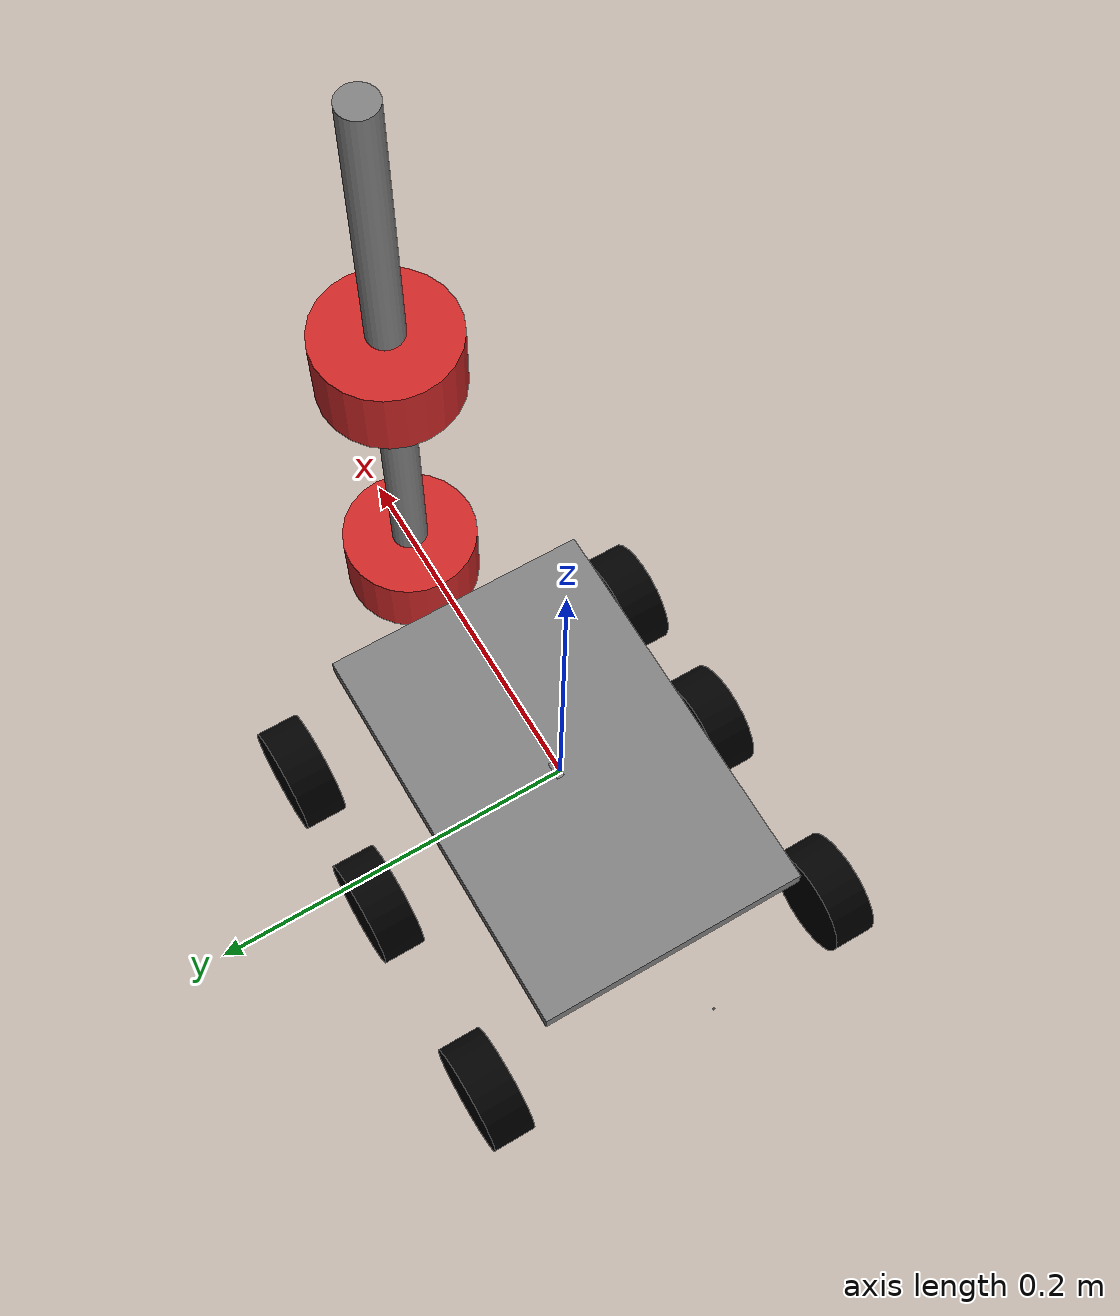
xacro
<?xml version="1.0"?>

<!-- Using initial specification from https://github.com/SyrianSpock/rover
Ideas taken from
http://www.generationrobots.com/blog/en/2015/02/robotic-simulation-scenarios-with-gazebo-and-ros/
-->

<robot name="lsbot" xmlns:xacro="http://www.ros.org/wiki/xacro">
  <xacro:property name="prefix" value=""/>
  <!-- Degree-to-radian conversions -->
  <xacro:property name="degrees_45" value="0.785398163"/>
  <xacro:property name="degrees_90" value="1.57079633"/>
  <xacro:property name="degrees_180" value="3.1415926535897931" />

  <!-- body properties
         body_length is measured along the x axis,
         body_width along the y axis, and body_height along the z axis. -->
  <xacro:property name="body_length"    value="0.2286"/>
  <xacro:property name="body_width"     value="0.1524"/>
  <xacro:property name="body_height"    value="0.01"/>
  <xacro:property name="body_mass"      value="0.5"/>
  <xacro:property name="body_clearance" value="0.125"/>

  <!-- Tower properties -->
  <xacro:property name="tower_name"     value="tower" />
  <xacro:property name="tower_length"   value="0.35" />
  <xacro:property name="tower_radius"   value="0.01" />
  <xacro:property name="tower_x"        value="${body_length/2 + 0.05}" />
  <xacro:property name="tower_xyz"      value="${tower_x} 0 ${tower_length/2}" />
  <xacro:property name="tower_mass"     value="0.05" />

  <xacro:property name="hub_dia"       value="0.100"/>
  <xacro:property name="tire_dia"      value="0.0625"/>
  <xacro:property name="tire_width"    value="0.024765"/>
  <xacro:property name="wheel_mass"    value="0.038980594"/>

  <!-- Wheel position properties -->
  <xacro:property name="wheelbase_xoffset" value="0.025"/>
  <xacro:property name="wheelbase_yoffset" value="0.022"/>
  <xacro:property name="wheel_bogie_d"    value="${3*tire_dia/2}"/>

  <xacro:property name="wheelbase_x"     value="${body_length/2 + wheelbase_xoffset - tire_dia/2}"/>
  <xacro:property name="wheelbase_track" value="${body_width/2 + wheelbase_yoffset + tire_width/2}"/>

  <!-- Sensor position properties -->
  <xacro:property name="scanner_length"  value="0.07570"/>
  <xacro:property name="scanner_mass"    value="0.05"/>
  <xacro:property name="sensor_colour"   value="0.8 0 0 1"/>

  <xacro:property name="scanner_width"   value="0.07570"/>
  <xacro:property name="scanner_height"  value="0.05"/>
  <xacro:property name="scanner_angle"   value="${degrees_180}"/>
  <xacro:property name="scanner_samples" value="180"/>
  <xacro:property name="scanner_topic"   value="/scan"/>
  <xacro:property name="scanner_position" value="${tower_x} 0 ${body_height/2 - scanner_height/2}" />
  <xacro:property name="scanner_orientation" value="0 0 0"/>

  <xacro:property name="floorscanner_position" value="${tower_x + 0.05} 0 ${tower_length}" />
  <xacro:property name="floorscanner_position_rotate" value="0 0 0" />
  <xacro:property name="floorscanner_topic"   value="/floorscan"/>
  <xacro:property name="floorscanner_orientation" value="0 0.68 0"/>
  <xacro:property name="floorscanner_orientation_rotate" value="0 0 0"/>
  <xacro:property name="floorscanner_angle"   value="${degrees_90}"/>

  <xacro:property name="axle_eff_limit" value="5.12766"/>
  <xacro:property name="axle_vel_limit" value="244.8696"/>

  <material name="body_mat">
    <color rgba="0.5 0.5 0.5 1"/>
  </material>
  <material name="tire_mat">
    <color rgba="0 0 0 1"/>
  </material>
  <material name="imu_mat">
    <color rgba="0 0 0 1"/>
  </material>

  <!-- Null inertial element. This is needed to make the model work with Gazebo. -->
  <xacro:macro name="null_inertial">
    <inertial>
      <mass value="0.001"/>
      <inertia ixx="0.001" ixy="0" ixz="0" iyy="0.001" iyz="0" izz="0.001"/>
    </inertial>
  </xacro:macro>

  <!-- Inertia of a solid cuboid. Width is measured along the x axis, depth along the y axis, and height along the z axis. -->
  <xacro:macro name="solid_cuboid_inertial"
               params="width depth height mass *origin">
    <inertial>
      <xacro:insert_block name="origin"/>
      <mass value="${mass}"/>
      <inertia ixx="${mass * (depth * depth + height * height) / 12}"
               ixy="0" ixz="0"
               iyy="${mass * (width * width + height * height) / 12}"
               iyz="0"
               izz="${mass * (width * width + depth * depth) / 12}"/>
    </inertial>
  </xacro:macro>

  <xacro:macro name="thick_walled_tube_inertial"
               params="inner_rad outer_rad height mass">
    <inertial>
      <mass value="${mass}"/>
      <inertia ixx="${(1 / 12) * mass * (3 * (inner_rad * inner_rad +
                    outer_rad * outer_rad) + height * height)}"
               ixy="0" ixz="0"
               iyy="${(1 / 12) * mass * (3 * (inner_rad * inner_rad +
                    outer_rad * outer_rad) + height * height)}"
               iyz="0"
               izz="${mass * (inner_rad * inner_rad +
                    outer_rad * outer_rad) / 2}"/>
    </inertial>
  </xacro:macro>

  <!-- The "wheel" macro defines an axle carrier, axle, and wheel. -->
  <xacro:macro name="wheel" params="lr_prefix fr_prefix lr_pos fr_pos">
    <joint name="${lr_prefix}_${fr_prefix}_axle" type="continuous">
      <parent link="body"/>
      <child link="${lr_prefix}_${fr_prefix}_wheel"/>
      <origin xyz="${fr_pos}
                   ${lr_pos}
                   ${- body_clearance + tire_dia/2}"
              rpy="${degrees_90} 0 0"/>
      <axis xyz="0 0 -1" use_parent_model_frame="0"/>
    </joint>
    <transmission name="${lr_prefix}_${fr_prefix}_axle_trans">
      <type>transmission_interface/SimpleTransmission</type>
      <joint name="${lr_prefix}_${fr_prefix}_axle2">
        <hardwareInterface>hardware_interface/VelocityJointInterface</hardwareInterface>
      </joint>
      <actuator name="${lr_prefix}_${fr_prefix}_axle_act">
        <hardwareInterface>hardware_interface/VelocityJointInterface</hardwareInterface>
        <mechanicalReduction>10</mechanicalReduction>
      </actuator>
    </transmission>
    <link name="${lr_prefix}_${fr_prefix}_wheel">
      <xacro:visual_collision rpy="0 0 0" material="tire_mat">
         <cylinder radius="${tire_dia / 2}" length="${tire_width}"/>
      </xacro:visual_collision>
      <xacro:thick_walled_tube_inertial
          inner_rad="${hub_dia / 2}" outer_rad="${tire_dia / 2}"
          height="${tire_width}" mass="${wheel_mass}"/>
    </link>
    <gazebo reference="${lr_prefix}_${fr_prefix}_wheel">
      <material>Gazebo/Black</material>
    </gazebo>
  </xacro:macro>

  <xacro:macro name="visual_collision" params="rpy material *form" >
   <visual>
      <geometry>
        <xacro:insert_block name="form"/>
      </geometry>
      <origin xyz="0 0 0" rpy="${rpy}" />
      <material name="${material}" />
    </visual>
    <collision>
      <geometry>
        <xacro:insert_block name="form"/>
      </geometry>
      <origin xyz="0 0 0" rpy="${rpy}" />
    </collision>
  </xacro:macro>

  <!-- robot_footprint -->
  <link name="robot_footprint"></link>

  <joint name="robot_footprint_joint" type="fixed">
    <origin xyz="0 0 0" rpy="0 0 0" />
    <parent link="robot_footprint"/>
    <child link="base_link" />
  </joint>

  <!-- base_link must have geometry so that its axes can be displayed in rviz. -->
  <link name="base_link">
    <visual>
      <geometry>
        <box size="0.01 0.01 0.01"/>
      </geometry>
      <material name="body_mat"/>
    </visual>
  </link>
  <gazebo reference="base_link">
    <material>Gazebo/Green</material>
  </gazebo>

  <joint name="imu_joint" type="fixed">
     <parent link="base_link"/>
     <child  link="imu_link"/>
     <axis   xyz="1 0 0"/>
     <origin xyz="-0.15 0 0" rpy="0 0 -${degrees_180}"/>
  </joint>

  <link name="imu_link">
    <xacro:null_inertial />
    <xacro:visual_collision rpy="0 0 0" material="imu_mat">
      <box size="0.001 0.001 0.001"/>
    </xacro:visual_collision>
  </link>

  <!-- body -->
  <link name="body">
    <xacro:visual_collision rpy="0 0 ${-body_height / 2}" material="body_mat">
      <box size="${body_length} ${body_width} ${body_height}"/>
    </xacro:visual_collision>
    <xacro:solid_cuboid_inertial
        width="${body_length}" depth="${body_width}"
        height="${body_height}" mass="${body_mass}">
      <origin xyz="0 0 ${-body_height / 2}"/>
    </xacro:solid_cuboid_inertial>
  </link>
  <gazebo reference="body">
    <material>Gazebo/Grey</material>
  </gazebo>

  <joint name="base_link_to_chasis" type="fixed">
    <parent link="base_link"/>
    <child  link="body"/>
  </joint>

  <xacro:include filename="$(find lsbot_description)/urdf/lsbot.transmission.xacro" />
  <link name="${prefix}motor1_link">
    <inertial>
      <origin rpy="0 0 0" xyz="0 0 0"/>
      <mass value="0.5"/>
      <inertia ixx="0.0200769278" ixy="-7.72273E-006" ixz="-0.0050158708" iyy="0.0257088151" iyz="5.49229E-006" izz="0.0120821377"/>
    </inertial>
    <visual>
      <origin rpy="0 0 0" xyz="0 0 0"/>
      <geometry>
        <box size="0.01 0.01 0.01"/>
      </geometry>
      <material name="Gazebo/Green">
        <color rgba="0. 0. 0. 1"/>
      </material>
    </visual>
    <collision>
      <origin rpy="0 0 0" xyz="0 0 0"/>
      <geometry>
        <box size="0.01 0.01 0.01"/>
      </geometry>
    </collision>
  </link>
  <gazebo reference="${prefix}motor1_link">
    <material>Gazebo/White</material>
    <selfCollide>True</selfCollide>
  </gazebo>
  <link name="${prefix}motor1_cover">
    <inertial>
      <origin rpy="0 0 0" xyz="0 0 0"/>
      <mass value="0.0"/>
      <inertia ixx="0.0" ixy="0.0" ixz="0.0" iyy="0.0" iyz="0.0" izz="0.0"/>
    </inertial>
    <visual>
      <origin rpy="0 0 0" xyz="0 0 0"/>
      <geometry>
        <box size="0.01 0.01 0.01"/>
      </geometry>
      <material name="Gazebo/Black">
        <color rgba="0. 0. 0. 1"/>
      </material>
    </visual>
    <collision>
      <origin rpy="0 0 0" xyz="0 0 0"/>
      <geometry>
        <box size="0.01 0.01 0.01"/>
      </geometry>
    </collision>
  </link>
  <gazebo reference="${prefix}motor1_cover">
    <material>Gazebo/Orange</material>
    <selfCollide>True</selfCollide>
  </gazebo>
  <joint name="${prefix}motor1" type="revolute">
    <origin rpy="0 0 0" xyz="0 0 0"/>
    <parent link="${prefix}${tower_name}"/>
    <child link="${prefix}motor1_link"/>
    <axis xyz="0 1 0"/>
    <limit effort="104.0" lower="-3.1416" upper="3.1416" velocity="1.57"/>
    <dynamics damping="0" friction="0"/>
  </joint>
  <joint name="${prefix}motor1_cover_joint" type="fixed">
    <origin rpy="0 0 0" xyz="0 0 0.0"/>
    <parent link="${prefix}motor1_link"/>
    <child link="${prefix}motor1_cover"/>
  </joint>

  <!-- Tower -->
  <link name="${tower_name}">
    <xacro:visual_collision rpy="0 0 0" material="body_mat">
      <cylinder length="${tower_length}" radius="${tower_radius}"/>
    </xacro:visual_collision>
    <xacro:solid_cuboid_inertial
        width="${tower_radius*2}" depth="${tower_radius*2}" height="${tower_length}" mass="${tower_mass}">
      <origin xyz="${tower_xyz}"/>
    </xacro:solid_cuboid_inertial>
  </link>
  <joint name="${tower_name}_joint" type="fixed">
    <parent link="body"/>
    <child  link="${tower_name}" />
    <origin xyz="${tower_xyz}" rpy="0 0 0" />
   </joint>
  <gazebo reference="${tower_name}">
    <material>Gazebo/Black</material>
  </gazebo>

  <!-- Wheels -->
  <xacro:wheel lr_prefix="left_bogie" fr_prefix="front"
               lr_pos="${wheelbase_track}"
               fr_pos="${wheelbase_x}"
               />
  <xacro:wheel lr_prefix="left_bogie" fr_prefix="rear"
               lr_pos="${wheelbase_track}"
               fr_pos="${wheelbase_x - wheel_bogie_d}"
               />
  <xacro:wheel lr_prefix="left_rocker" fr_prefix="rear"
               lr_pos="${wheelbase_track}"
               fr_pos="${- wheelbase_x}"
               />
  <xacro:wheel lr_prefix="right_bogie" fr_prefix="front"
               lr_pos="${- wheelbase_track}"
               fr_pos="${wheelbase_x}"
               />
  <xacro:wheel lr_prefix="right_bogie" fr_prefix="rear"
               lr_pos="${- wheelbase_track}"
               fr_pos="${wheelbase_x - wheel_bogie_d}"
               />
  <xacro:wheel lr_prefix="right_rocker" fr_prefix="rear"
               lr_pos="${- wheelbase_track}"
               fr_pos="${- wheelbase_x}"
               />

  <gazebo>
    <plugin name="${prefix}joint_state" filename="libgazebo_ros_joint_state_publisher.so">
      <ros>
        <argument>--ros-args --remap ~/out:=${prefix}joint_states</argument>
      </ros>
      <updateRate>10</updateRate>
      <jointName>${prefix}motor1</jointName>
    </plugin>

    <plugin name="lsbot_actuator_rotaryservo" filename="liblsbot_gazebo_joint_plugin.so">
      <ros></ros>
      <axis1>${prefix}motor1</axis1>
    </plugin>

    <!-- Differential Drive -->
    <plugin name="differential_drive_controller" filename="libgazebo_ros_diff_drive.so">
      <rosDebugLevel>na</rosDebugLevel>
      <legacyMode>false</legacyMode>
      <publishWheelTF>true</publishWheelTF>
      <robotNamespace>/</robotNamespace>
      <publishTf>1</publishTf>
      <publishOdomTF>0</publishOdomTF>
      <publishWheelJointState>true</publishWheelJointState>
      <alwaysOn>true</alwaysOn>
      <updateRate>5</updateRate>
      <leftJoint>left_bogie_rear_axle</leftJoint>
      <rightJoint>right_bogie_rear_axle</rightJoint>
      <wheelSeparation>0.4</wheelSeparation>
      <wheelDiameter>0.2</wheelDiameter>
      <broadcastTF>1</broadcastTF>
      <wheelTorque>2800</wheelTorque>
      <wheelAcceleration>1.0</wheelAcceleration>
      <commandTopic>cmd_vel</commandTopic>
      <odometryFrame>odom</odometryFrame>
      <odometryTopic>odom_shaft</odometryTopic>
      <robotBaseFrame>robot_footprint</robotBaseFrame>
      <odometrySource>world</odometrySource>
    </plugin>
  </gazebo>

  <!-- LIDAR sensor -->
  <xacro:include filename="$(find lsbot_description)/urdf/lidar.urdf.xacro" />

  <xacro:lidar name="scanner" parent="body" width="${scanner_width}" height="${scanner_height}" position="${scanner_position}" samples="${scanner_samples}" angle="${scanner_angle}" topic="${scanner_topic}" orientation="${scanner_orientation}" frame="scanner"/>
  <xacro:lidar name="floorscan" parent="motor1_cover" width="${scanner_width}" height="${scanner_height}" position="${floorscanner_position_rotate}" samples="${scanner_samples}" angle="${floorscanner_angle}" topic="${floorscanner_topic}" orientation="${floorscanner_orientation_rotate}" frame="floorscan_dynamic"/>

</robot>

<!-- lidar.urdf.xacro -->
<!-- Using information from
http://gazebosim.org/tutorials?tut=ros_gzplugins#GPULaser
http://www.iroboapp.org/index.php?title=Adding_Hokuyo_Laser_Range_Finder_to_Turtlebot
-->

<robot xmlns:xacro="http://www.ros.org/wiki/xacro">
  <xacro:property name="degrees_180" value="3.1415926535897931" />
  <!-- Sensors properties -->
  <xacro:property name="scanner_length"  value="0.07570"/>
  <xacro:property name="scanner_width"   value="0.07570"/>
  <xacro:property name="scanner_height"  value="0.04080"/>
  <xacro:property name="scanner_mass"    value="0.2"/>
  <xacro:property name="sensor_colour"   value="0.8 0 0 1"/>

  <material name="lidar_mat">
    <color rgba="${sensor_colour}"/>
  </material>

  <xacro:macro name="lidar_model" params="name parent *origin">
    <joint name="hokuyo_joint" type="fixed">
      <axis xyz="0 1 0" />
      <xacro:insert_block name="origin" />
      <parent link="body"/>
      <child link="scanner"/>
    </joint>

    <!-- Hokuyo Laser -->
    <link name="scanner">
      <xacro:visual_collision rpy="0 0 0" material="lidar_mat">
        <cylinder radius="${scanner_width/2}" length="${scanner_height}"/>
      </xacro:visual_collision>
      <xacro:solid_cuboid_inertial
          width="${scanner_length}" depth="${scanner_width}"
          height="${scanner_height}" mass="${scanner_mass}">
        <origin xyz="0 0 0" rpy="0 0 0" />
      </xacro:solid_cuboid_inertial>
    </link>

  </xacro:macro>

  <xacro:macro name="lidar" params="name parent width height position samples angle topic orientation frame">
    <link name="${name}">
      <visual>
        <geometry>
          <cylinder radius="${width/2}" length="${height}"/>
        </geometry>
        <origin xyz="0 0 0" rpy="0 0 0" />
        <material name="sensor_mat" />
      </visual>
    </link>

    <joint name="base_to_${name}" type="fixed">
      <parent link="${parent}"/>
      <child link="${name}"/>
      <origin xyz="${position}" rpy="${orientation}"/>
    </joint>

    <gazebo reference="${name}">
      <material>Gazebo/Red</material>
      <sensor type="ray" name="${name}_hokuyo_sensor">
        <pose>${width/2} 0 0 0 0 0</pose>
        <visualize>false</visualize>
        <update_rate>10</update_rate>
        <ray>
          <scan>
            <horizontal>
              <samples>${samples}</samples>
              <resolution>1</resolution>
              <min_angle>-${angle}</min_angle>
              <max_angle>${angle}</max_angle>
            </horizontal>
          </scan>
          <range>
            <min>0.10</min>
            <max>10.0</max>
            <resolution>0.001</resolution>
          </range>
        </ray>
        <plugin name="gazebo_ros_${name}_hokuyo_controller" filename="libgazebo_ros_laser.so">
          <topicName>${topic}</topicName>
          <frameName>${frame}</frameName>
        </plugin>
      </sensor>
    </gazebo>
  </xacro:macro>

</robot>
